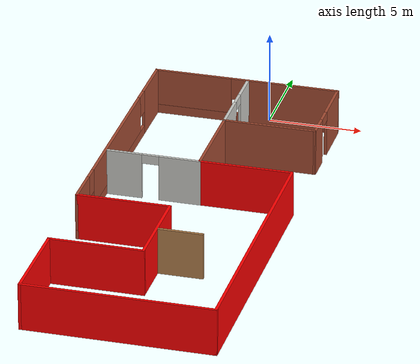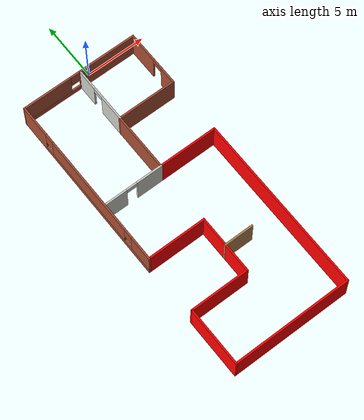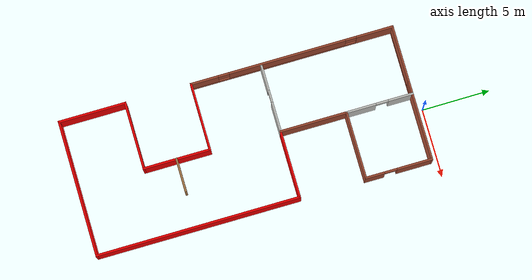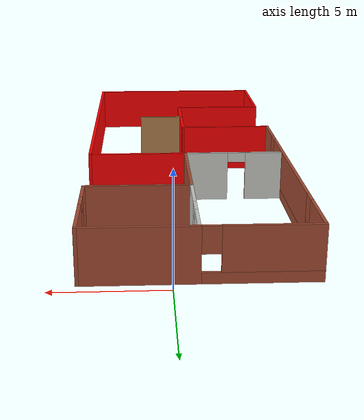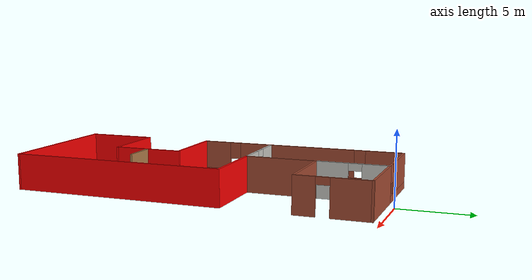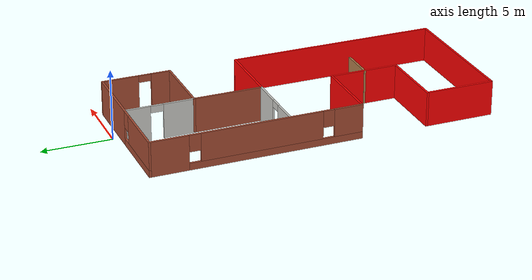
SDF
<?xml version='1.0'?>
<sdf version='1.6'>
  <model name='P1Building'>
    <pose frame=''>-1.115 -12.825 0 0 -0 0</pose>
    <link name='Wall_14'>
      <collision name='Wall_14_Collision'>
        <geometry>
          <box>
            <size>5 0.15 2.5</size>
          </box>
        </geometry>
        <pose frame=''>0 0 1.25 0 -0 0</pose>
      </collision>
      <visual name='Wall_14_Visual'>
        <pose frame=''>0 0 1.25 0 -0 0</pose>
        <geometry>
          <box>
            <size>5 0.15 2.5</size>
          </box>
        </geometry>
        <material>
          <script>
            <uri>file://media/materials/scripts/gazebo.material</uri>
            <name>Gazebo/Grey</name>
          </script>
          <ambient>1 0 0 1</ambient>
        </material>
        <meta>
          <layer>0</layer>
        </meta>
      </visual>
      <pose frame=''>2.5 2.575 0 0 -0 0</pose>
    </link>
    <link name='Wall_2'>
      <collision name='Wall_2_Collision'>
        <geometry>
          <box>
            <size>5 0.15 2.5</size>
          </box>
        </geometry>
        <pose frame=''>0 0 1.25 0 -0 0</pose>
      </collision>
      <visual name='Wall_2_Visual'>
        <pose frame=''>0 0 1.25 0 -0 0</pose>
        <geometry>
          <box>
            <size>5 0.15 2.5</size>
          </box>
        </geometry>
        <material>
          <script>
            <uri>file://media/materials/scripts/gazebo.material</uri>
            <name>Gazebo/Bricks</name>
          </script>
          <ambient>1 1 1 1</ambient>
        </material>
        <meta>
          <layer>0</layer>
        </meta>
      </visual>
      <pose frame=''>2.5 7.425 0 0 -0 3.14159</pose>
    </link>
    <link name='Wall_47'>
      <collision name='Wall_47_Collision'>
        <geometry>
          <box>
            <size>15 0.15 2.5</size>
          </box>
        </geometry>
        <pose frame=''>0 0 1.25 0 -0 0</pose>
      </collision>
      <visual name='Wall_47_Visual'>
        <pose frame=''>0 0 1.25 0 -0 0</pose>
        <geometry>
          <box>
            <size>15 0.15 2.5</size>
          </box>
        </geometry>
        <material>
          <script>
            <uri>file://media/materials/scripts/gazebo.material</uri>
            <name>Gazebo/Grey</name>
          </script>
          <ambient>1 0 0 1</ambient>
        </material>
        <meta>
          <layer>0</layer>
        </meta>
      </visual>
      <pose frame=''>4.925 -4.85 0 0 0 -1.5708</pose>
    </link>
    <link name='Wall_49'>
      <collision name='Wall_49_Collision'>
        <geometry>
          <box>
            <size>10 0.15 2.5</size>
          </box>
        </geometry>
        <pose frame=''>0 0 1.25 0 -0 0</pose>
      </collision>
      <visual name='Wall_49_Visual'>
        <pose frame=''>0 0 1.25 0 -0 0</pose>
        <geometry>
          <box>
            <size>10 0.15 2.5</size>
          </box>
        </geometry>
        <material>
          <script>
            <uri>file://media/materials/scripts/gazebo.material</uri>
            <name>Gazebo/Grey</name>
          </script>
          <ambient>1 0 0 1</ambient>
        </material>
        <meta>
          <layer>0</layer>
        </meta>
      </visual>
      <pose frame=''>0 -12.275 0 0 -0 3.14159</pose>
    </link>
    <link name='Wall_57'>
      <pose frame=''>4.925 9.85 0 0 -0 1.5708</pose>
      <visual name='Wall_57_Visual_0'>
        <pose frame=''>-1.77155 0 1.25 0 -0 0</pose>
        <geometry>
          <box>
            <size>1.45691 0.15 2.5</size>
          </box>
        </geometry>
        <material>
          <script>
            <uri>file://media/materials/scripts/gazebo.material</uri>
            <name>Gazebo/Bricks</name>
          </script>
          <ambient>1 1 1 1</ambient>
        </material>
        <meta>
          <layer>0</layer>
        </meta>
      </visual>
      <collision name='Wall_57_Collision_0'>
        <geometry>
          <box>
            <size>1.45691 0.15 2.5</size>
          </box>
        </geometry>
        <pose frame=''>-1.77155 0 1.25 0 -0 0</pose>
      </collision>
      <visual name='Wall_57_Visual_1'>
        <pose frame=''>1.17845 0 1.25 0 -0 0</pose>
        <geometry>
          <box>
            <size>2.64309 0.15 2.5</size>
          </box>
        </geometry>
        <material>
          <script>
            <uri>file://media/materials/scripts/gazebo.material</uri>
            <name>Gazebo/Bricks</name>
          </script>
          <ambient>1 1 1 1</ambient>
        </material>
        <meta>
          <layer>0</layer>
        </meta>
      </visual>
      <collision name='Wall_57_Collision_1'>
        <geometry>
          <box>
            <size>2.64309 0.15 2.5</size>
          </box>
        </geometry>
        <pose frame=''>1.17845 0 1.25 0 -0 0</pose>
      </collision>
      <visual name='Wall_57_Visual_2'>
        <pose frame=''>-0.593093 0 2.25 0 -0 0</pose>
        <geometry>
          <box>
            <size>0.9 0.15 0.5</size>
          </box>
        </geometry>
        <material>
          <script>
            <uri>file://media/materials/scripts/gazebo.material</uri>
            <name>Gazebo/Bricks</name>
          </script>
          <ambient>1 1 1 1</ambient>
        </material>
        <meta>
          <layer>0</layer>
        </meta>
      </visual>
      <collision name='Wall_57_Collision_2'>
        <geometry>
          <box>
            <size>0.9 0.15 0.5</size>
          </box>
        </geometry>
        <pose frame=''>-0.593093 0 2.25 0 -0 0</pose>
      </collision>
    </link>
    <link name='Wall_59'>
      <pose frame=''>0 12.275 0 0 -0 3.14159</pose>
      <visual name='Wall_59_Visual_0'>
        <pose frame=''>-2.48916 0 1.25 0 -0 0</pose>
        <geometry>
          <box>
            <size>5.02167 0.15 2.5</size>
          </box>
        </geometry>
        <material>
          <script>
            <uri>file://media/materials/scripts/gazebo.material</uri>
            <name>Gazebo/Bricks</name>
          </script>
          <ambient>1 1 1 1</ambient>
        </material>
        <meta>
          <layer>0</layer>
        </meta>
      </visual>
      <collision name='Wall_59_Collision_0'>
        <geometry>
          <box>
            <size>5.02167 0.15 2.5</size>
          </box>
        </geometry>
        <pose frame=''>-2.48916 0 1.25 0 -0 0</pose>
      </collision>
      <visual name='Wall_59_Visual_1'>
        <pose frame=''>2.51084 0 0.25 0 -0 0</pose>
        <geometry>
          <box>
            <size>4.97833 0.15 0.5</size>
          </box>
        </geometry>
        <material>
          <script>
            <uri>file://media/materials/scripts/gazebo.material</uri>
            <name>Gazebo/Bricks</name>
          </script>
          <ambient>1 1 1 1</ambient>
        </material>
        <meta>
          <layer>0</layer>
        </meta>
      </visual>
      <collision name='Wall_59_Collision_1'>
        <geometry>
          <box>
            <size>4.97833 0.15 0.5</size>
          </box>
        </geometry>
        <pose frame=''>2.51084 0 0.25 0 -0 0</pose>
      </collision>
      <visual name='Wall_59_Visual_2'>
        <pose frame=''>2.91084 0 1.5 0 -0 0</pose>
        <geometry>
          <box>
            <size>4.17833 0.15 2</size>
          </box>
        </geometry>
        <material>
          <script>
            <uri>file://media/materials/scripts/gazebo.material</uri>
            <name>Gazebo/Bricks</name>
          </script>
          <ambient>1 1 1 1</ambient>
        </material>
        <meta>
          <layer>0</layer>
        </meta>
      </visual>
      <collision name='Wall_59_Collision_2'>
        <geometry>
          <box>
            <size>4.17833 0.15 2</size>
          </box>
        </geometry>
        <pose frame=''>2.91084 0 1.5 0 -0 0</pose>
      </collision>
      <visual name='Wall_59_Visual_3'>
        <pose frame=''>0.421672 0 1.9 0 -0 0</pose>
        <geometry>
          <box>
            <size>0.8 0.15 1.2</size>
          </box>
        </geometry>
        <material>
          <script>
            <uri>file://media/materials/scripts/gazebo.material</uri>
            <name>Gazebo/Bricks</name>
          </script>
          <ambient>1 1 1 1</ambient>
        </material>
        <meta>
          <layer>0</layer>
        </meta>
      </visual>
      <collision name='Wall_59_Collision_3'>
        <geometry>
          <box>
            <size>0.8 0.15 1.2</size>
          </box>
        </geometry>
        <pose frame=''>0.421672 0 1.9 0 -0 0</pose>
      </collision>
    </link>
    <link name='Wall_6'>
      <collision name='Wall_6_Collision'>
        <geometry>
          <box>
            <size>5 0.15 2.5</size>
          </box>
        </geometry>
        <pose frame=''>0 0 1.25 0 -0 0</pose>
      </collision>
      <visual name='Wall_6_Visual'>
        <pose frame=''>0 0 1.25 0 -0 0</pose>
        <geometry>
          <box>
            <size>5 0.15 2.5</size>
          </box>
        </geometry>
        <material>
          <script>
            <uri>file://media/materials/scripts/gazebo.material</uri>
            <name>Gazebo/Bricks</name>
          </script>
          <ambient>1 1 1 1</ambient>
        </material>
        <meta>
          <layer>0</layer>
        </meta>
      </visual>
      <pose frame=''>0.075 5 0 0 0 -1.5708</pose>
    </link>
    <link name='Wall_60'>
      <pose frame=''>-4.925 4.85 0 0 0 -1.5708</pose>
      <visual name='Wall_60_Visual_0'>
        <pose frame=''>-6.12564 0 1.25 0 -0 0</pose>
        <geometry>
          <box>
            <size>2.74872 0.15 2.5</size>
          </box>
        </geometry>
        <material>
          <script>
            <uri>file://media/materials/scripts/gazebo.material</uri>
            <name>Gazebo/Bricks</name>
          </script>
          <ambient>1 0 0 1</ambient>
        </material>
        <meta>
          <layer>0</layer>
        </meta>
      </visual>
      <collision name='Wall_60_Collision_0'>
        <geometry>
          <box>
            <size>2.74872 0.15 2.5</size>
          </box>
        </geometry>
        <pose frame=''>-6.12564 0 1.25 0 -0 0</pose>
      </collision>
      <visual name='Wall_60_Visual_1'>
        <pose frame=''>1.37436 0 0.25 0 -0 0</pose>
        <geometry>
          <box>
            <size>12.2513 0.15 0.5</size>
          </box>
        </geometry>
        <material>
          <script>
            <uri>file://media/materials/scripts/gazebo.material</uri>
            <name>Gazebo/Bricks</name>
          </script>
          <ambient>1 0 0 1</ambient>
        </material>
        <meta>
          <layer>0</layer>
        </meta>
      </visual>
      <collision name='Wall_60_Collision_1'>
        <geometry>
          <box>
            <size>12.2513 0.15 0.5</size>
          </box>
        </geometry>
        <pose frame=''>1.37436 0 0.25 0 -0 0</pose>
      </collision>
      <visual name='Wall_60_Visual_2'>
        <pose frame=''>0.338827 0 1.5 0 -0 0</pose>
        <geometry>
          <box>
            <size>8.58021 0.15 2</size>
          </box>
        </geometry>
        <material>
          <script>
            <uri>file://media/materials/scripts/gazebo.material</uri>
            <name>Gazebo/Bricks</name>
          </script>
          <ambient>1 0 0 1</ambient>
        </material>
        <meta>
          <layer>0</layer>
        </meta>
      </visual>
      <collision name='Wall_60_Collision_2'>
        <geometry>
          <box>
            <size>8.58021 0.15 2</size>
          </box>
        </geometry>
        <pose frame=''>0.338827 0 1.5 0 -0 0</pose>
      </collision>
      <visual name='Wall_60_Visual_3'>
        <pose frame=''>6.46447 0 1.5 0 -0 0</pose>
        <geometry>
          <box>
            <size>2.07107 0.15 2</size>
          </box>
        </geometry>
        <material>
          <script>
            <uri>file://media/materials/scripts/gazebo.material</uri>
            <name>Gazebo/Bricks</name>
          </script>
          <ambient>1 0 0 1</ambient>
        </material>
        <meta>
          <layer>0</layer>
        </meta>
      </visual>
      <collision name='Wall_60_Collision_3'>
        <geometry>
          <box>
            <size>2.07107 0.15 2</size>
          </box>
        </geometry>
        <pose frame=''>6.46447 0 1.5 0 -0 0</pose>
      </collision>
      <visual name='Wall_60_Visual_4'>
        <pose frame=''>-4.35128 0 1.9 0 -0 0</pose>
        <geometry>
          <box>
            <size>0.8 0.15 1.2</size>
          </box>
        </geometry>
        <material>
          <script>
            <uri>file://media/materials/scripts/gazebo.material</uri>
            <name>Gazebo/Bricks</name>
          </script>
          <ambient>1 0 0 1</ambient>
        </material>
        <meta>
          <layer>0</layer>
        </meta>
      </visual>
      <collision name='Wall_60_Collision_4'>
        <geometry>
          <box>
            <size>0.8 0.15 1.2</size>
          </box>
        </geometry>
        <pose frame=''>-4.35128 0 1.9 0 -0 0</pose>
      </collision>
      <visual name='Wall_60_Visual_5'>
        <pose frame=''>5.02893 0 1.9 0 -0 0</pose>
        <geometry>
          <box>
            <size>0.8 0.15 1.2</size>
          </box>
        </geometry>
        <material>
          <script>
            <uri>file://media/materials/scripts/gazebo.material</uri>
            <name>Gazebo/Bricks</name>
          </script>
          <ambient>1 0 0 1</ambient>
        </material>
        <meta>
          <layer>0</layer>
        </meta>
      </visual>
      <collision name='Wall_60_Collision_5'>
        <geometry>
          <box>
            <size>0.8 0.15 1.2</size>
          </box>
        </geometry>
        <pose frame=''>5.02893 0 1.9 0 -0 0</pose>
      </collision>
    </link>
    <link name='Wall_63'>
      <collision name='Wall_63_Collision'>
        <geometry>
          <box>
            <size>5 0.15 2.5</size>
          </box>
        </geometry>
        <pose frame=''>0 0 1.25 0 -0 0</pose>
      </collision>
      <visual name='Wall_63_Visual'>
        <pose frame=''>0 0 1.25 0 -0 0</pose>
        <geometry>
          <box>
            <size>5 0.15 2.5</size>
          </box>
        </geometry>
        <material>
          <script>
            <uri>file://media/materials/scripts/gazebo.material</uri>
            <name>Gazebo/Grey</name>
          </script>
          <ambient>1 0 0 1</ambient>
        </material>
        <meta>
          <layer>0</layer>
        </meta>
      </visual>
      <pose frame=''>-2.5 -2.575 0 0 -0 0</pose>
    </link>
    <link name='Wall_65'>
      <collision name='Wall_65_Collision'>
        <geometry>
          <box>
            <size>5 0.15 2.5</size>
          </box>
        </geometry>
        <pose frame=''>0 0 1.25 0 -0 0</pose>
      </collision>
      <visual name='Wall_65_Visual'>
        <pose frame=''>0 0 1.25 0 -0 0</pose>
        <geometry>
          <box>
            <size>5 0.15 2.5</size>
          </box>
        </geometry>
        <material>
          <script>
            <uri>file://media/materials/scripts/gazebo.material</uri>
            <name>Gazebo/Grey</name>
          </script>
          <ambient>1 0 0 1</ambient>
        </material>
        <meta>
          <layer>0</layer>
        </meta>
      </visual>
      <pose frame=''>-0.075 -5 0 0 0 -1.5708</pose>
    </link>
    <link name='Wall_71'>
      <collision name='Wall_71_Collision'>
        <geometry>
          <box>
            <size>5 0.15 2.5</size>
          </box>
        </geometry>
        <pose frame=''>0 0 1.25 0 -0 0</pose>
      </collision>
      <visual name='Wall_71_Visual'>
        <pose frame=''>0 0 1.25 0 -0 0</pose>
        <geometry>
          <box>
            <size>5 0.15 2.5</size>
          </box>
        </geometry>
        <material>
          <script>
            <uri>file://media/materials/scripts/gazebo.material</uri>
            <name>Gazebo/Grey</name>
          </script>
          <ambient>1 0 0 1</ambient>
        </material>
        <meta>
          <layer>0</layer>
        </meta>
      </visual>
      <pose frame=''>-2.5 -7.425 0 0 -0 3.14159</pose>
    </link>
    <link name='Wall_72'>
      <collision name='Wall_72_Collision'>
        <geometry>
          <box>
            <size>5 0.15 2.5</size>
          </box>
        </geometry>
        <pose frame=''>0 0 1.25 0 -0 0</pose>
      </collision>
      <visual name='Wall_72_Visual'>
        <pose frame=''>0 0 1.25 0 -0 0</pose>
        <geometry>
          <box>
            <size>5 0.15 2.5</size>
          </box>
        </geometry>
        <material>
          <script>
            <uri>file://media/materials/scripts/gazebo.material</uri>
            <name>Gazebo/Grey</name>
          </script>
          <ambient>1 0 0 1</ambient>
        </material>
        <meta>
          <layer>0</layer>
        </meta>
      </visual>
      <pose frame=''>-4.925 -9.85 0 0 0 -1.5708</pose>
    </link>
    <link name='Wall_74'>
      <pose frame=''>0.075 9.85 0 0 -0 1.5708</pose>
      <visual name='Wall_74_Visual_0'>
        <pose frame=''>-1.37739 0 1.25 0 -0 0</pose>
        <geometry>
          <box>
            <size>2.24523 0.15 2.5</size>
          </box>
        </geometry>
        <material>
          <script>
            <uri>file://media/materials/scripts/gazebo.material</uri>
            <name>Gazebo/CeilingTiled</name>
          </script>
          <ambient>1 1 1 1</ambient>
        </material>
        <meta>
          <layer>0</layer>
        </meta>
      </visual>
      <collision name='Wall_74_Collision_0'>
        <geometry>
          <box>
            <size>2.24523 0.15 2.5</size>
          </box>
        </geometry>
        <pose frame=''>-1.37739 0 1.25 0 -0 0</pose>
      </collision>
      <visual name='Wall_74_Visual_1'>
        <pose frame=''>1.57261 0 1.25 0 -0 0</pose>
        <geometry>
          <box>
            <size>1.85477 0.15 2.5</size>
          </box>
        </geometry>
        <material>
          <script>
            <uri>file://media/materials/scripts/gazebo.material</uri>
            <name>Gazebo/CeilingTiled</name>
          </script>
          <ambient>1 1 1 1</ambient>
        </material>
        <meta>
          <layer>0</layer>
        </meta>
      </visual>
      <collision name='Wall_74_Collision_1'>
        <geometry>
          <box>
            <size>1.85477 0.15 2.5</size>
          </box>
        </geometry>
        <pose frame=''>1.57261 0 1.25 0 -0 0</pose>
      </collision>
      <visual name='Wall_74_Visual_2'>
        <pose frame=''>0.195227 0 2.25 0 -0 0</pose>
        <geometry>
          <box>
            <size>0.9 0.15 0.5</size>
          </box>
        </geometry>
        <material>
          <script>
            <uri>file://media/materials/scripts/gazebo.material</uri>
            <name>Gazebo/CeilingTiled</name>
          </script>
          <ambient>1 1 1 1</ambient>
        </material>
        <meta>
          <layer>0</layer>
        </meta>
      </visual>
      <collision name='Wall_74_Collision_2'>
        <geometry>
          <box>
            <size>0.9 0.15 0.5</size>
          </box>
        </geometry>
        <pose frame=''>0.195227 0 2.25 0 -0 0</pose>
      </collision>
    </link>
    <link name='Wall_80'>
      <pose frame=''>-2.35 2.575 0 0 -0 3.14159</pose>
      <visual name='Wall_80_Visual_0'>
        <pose frame=''>-1.38194 0 1.25 0 -0 0</pose>
        <geometry>
          <box>
            <size>2.23611 0.15 2.5</size>
          </box>
        </geometry>
        <material>
          <script>
            <uri>file://media/materials/scripts/gazebo.material</uri>
            <name>Gazebo/CeilingTiled</name>
          </script>
          <ambient>1 1 1 1</ambient>
        </material>
        <meta>
          <layer>0</layer>
        </meta>
      </visual>
      <collision name='Wall_80_Collision_0'>
        <geometry>
          <box>
            <size>2.23611 0.15 2.5</size>
          </box>
        </geometry>
        <pose frame=''>-1.38194 0 1.25 0 -0 0</pose>
      </collision>
      <visual name='Wall_80_Visual_1'>
        <pose frame=''>1.56806 0 1.25 0 -0 0</pose>
        <geometry>
          <box>
            <size>1.86389 0.15 2.5</size>
          </box>
        </geometry>
        <material>
          <script>
            <uri>file://media/materials/scripts/gazebo.material</uri>
            <name>Gazebo/CeilingTiled</name>
          </script>
          <ambient>1 1 1 1</ambient>
        </material>
        <meta>
          <layer>0</layer>
        </meta>
      </visual>
      <collision name='Wall_80_Collision_1'>
        <geometry>
          <box>
            <size>1.86389 0.15 2.5</size>
          </box>
        </geometry>
        <pose frame=''>1.56806 0 1.25 0 -0 0</pose>
      </collision>
      <visual name='Wall_80_Visual_2'>
        <pose frame=''>0.186114 0 2.25 0 -0 0</pose>
        <geometry>
          <box>
            <size>0.9 0.15 0.5</size>
          </box>
        </geometry>
        <material>
          <script>
            <uri>file://media/materials/scripts/gazebo.material</uri>
            <name>Gazebo/CeilingTiled</name>
          </script>
          <ambient>1 1 1 1</ambient>
        </material>
        <meta>
          <layer>0</layer>
        </meta>
      </visual>
      <collision name='Wall_80_Collision_2'>
        <geometry>
          <box>
            <size>0.9 0.15 0.5</size>
          </box>
        </geometry>
        <pose frame=''>0.186114 0 2.25 0 -0 0</pose>
      </collision>
    </link>
    <link name='Wall_82'>
      <collision name='Wall_82_Collision'>
        <geometry>
          <box>
            <size>2.5 0.15 2.5</size>
          </box>
        </geometry>
        <pose frame=''>0 0 1.25 0 -0 0</pose>
      </collision>
      <visual name='Wall_82_Visual'>
        <pose frame=''>0 0 1.25 0 -0 0</pose>
        <geometry>
          <box>
            <size>2.5 0.15 2.5</size>
          </box>
        </geometry>
        <material>
          <script>
            <uri>file://media/materials/scripts/gazebo.material</uri>
            <name>Gazebo/Wood</name>
          </script>
          <ambient>1 1 1 1</ambient>
        </material>
        <meta>
          <layer>0</layer>
        </meta>
      </visual>
      <pose frame=''>1.09111 -5.02696 0 0 -0 0</pose>
    </link>
    <static>1</static>
  </model>
</sdf>
